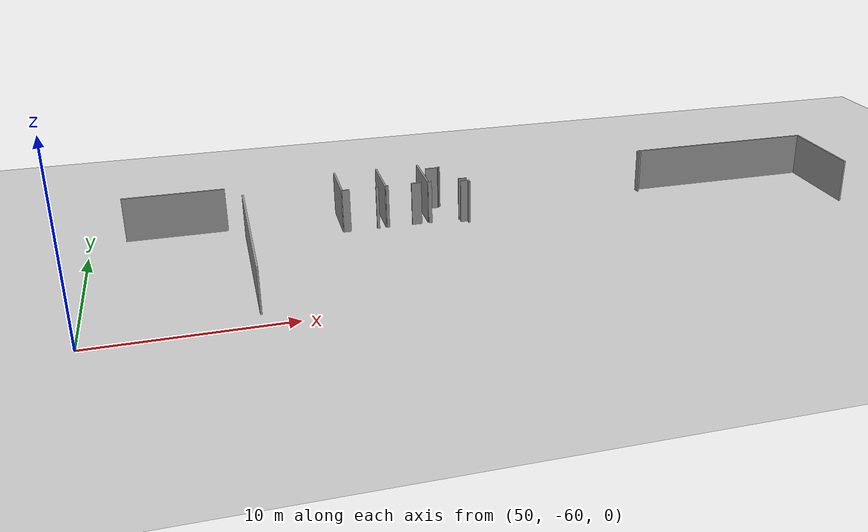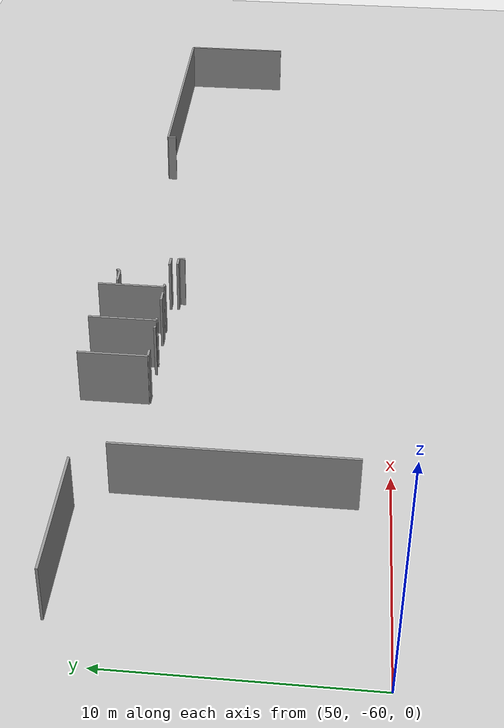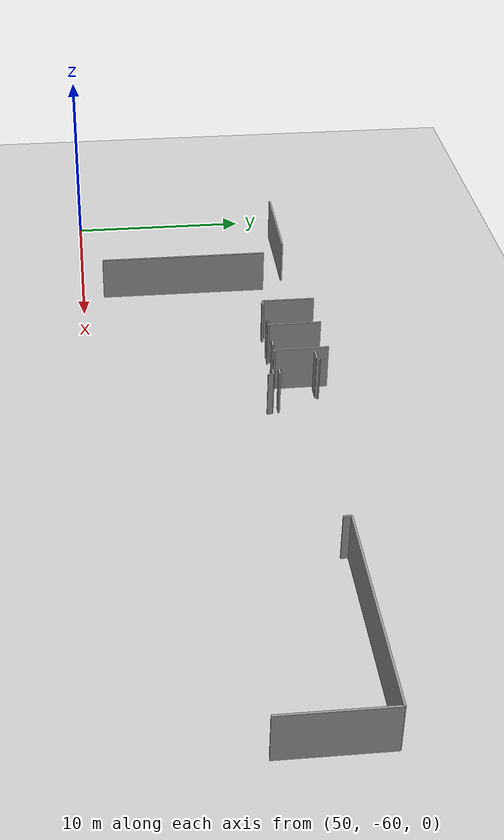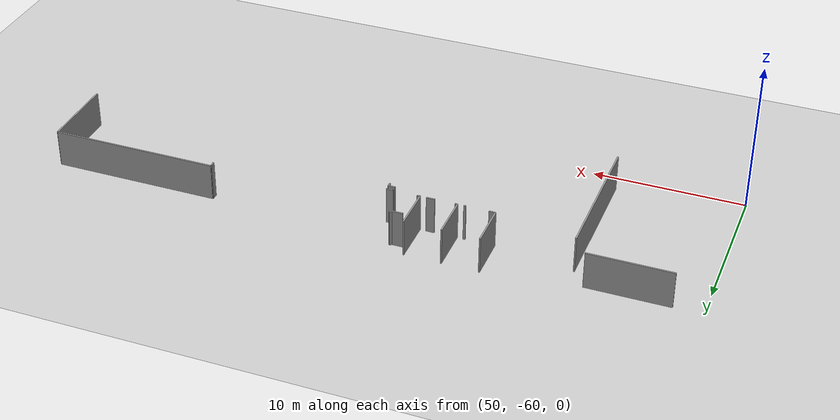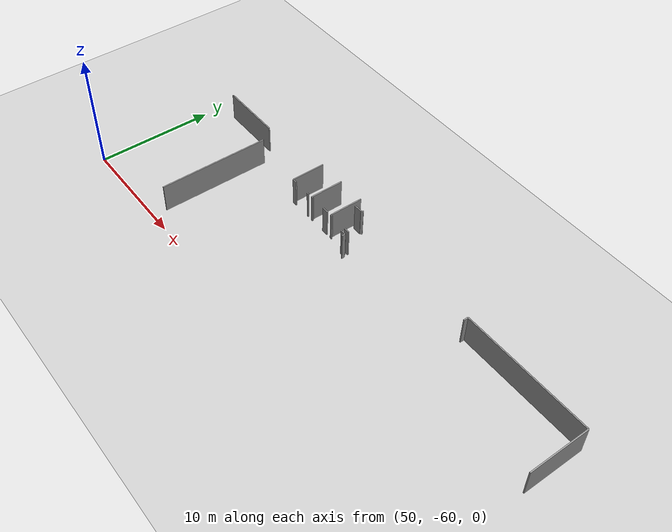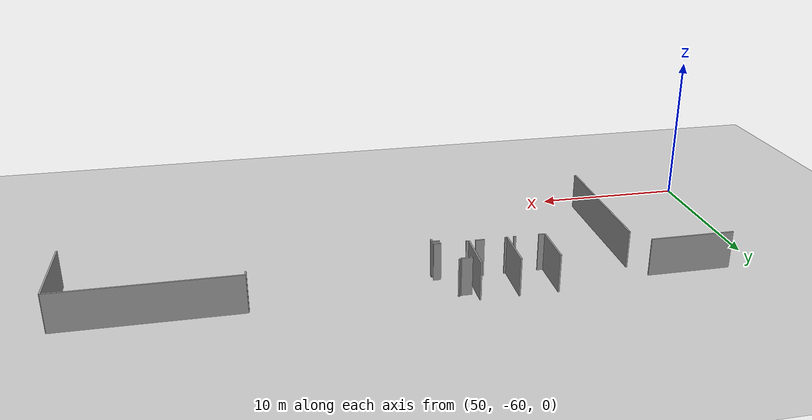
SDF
<sdf version="1.6">
 <world name="default">
  <model name="ground_plane">
   <static>1</static>
   <link name="link">
    <collision name="collision">
     <geometry><plane><normal>0 0 1</normal><size>100 100</size></plane></geometry>
     <surface><friction><ode><mu>100</mu><mu2>50</mu2></ode></friction></surface>
    </collision>
    <visual name="visual">
     <cast_shadows>0</cast_shadows>
     <geometry><plane><normal>0 0 1</normal><size>100 100</size></plane></geometry>
     <material>
      <script><uri>file://media/materials/scripts/gazebo.material</uri><name>Gazebo/Grey</name></script>
     </material>
    </visual>
   </link>
  </model>
  <model name="0510035517_A_40_1_105">
   <static>1</static>
   <link name="Wall_644">
    <collision name="Wall_644_Collision">
     <geometry><box><size>9.45286339694 0.1 2.5</size></box></geometry>
     <pose>4.72643169847 0 1.25 0 0 0</pose>
    </collision>
    <visual name="Wall_644_Visual">
     <pose>4.72643169847 0 1.25 0 0 0</pose>
     <geometry><box><size>9.45286339694 0.1 2.5</size></box></geometry>
     <material>
      <script><uri>file://media/materials/scripts/gazebo.material</uri><name>Gazebo/Grey</name></script>
      <ambient>1 1 1 1</ambient>
     </material>
    </visual>
    <pose>152.823113043 -113.127847353 0 0 0 -1.57079632679</pose>
   </link>
   <link name="Wall_650">
    <collision name="Wall_650_Collision">
     <geometry><box><size>5.46107266986 0.1 2.5</size></box></geometry>
     <pose>2.73053633493 0 1.25 0 0 0</pose>
    </collision>
    <visual name="Wall_650_Visual">
     <pose>2.73053633493 0 1.25 0 0 0</pose>
     <geometry><box><size>5.46107266986 0.1 2.5</size></box></geometry>
     <material>
      <script><uri>file://media/materials/scripts/gazebo.material</uri><name>Gazebo/Grey</name></script>
      <ambient>1 1 1 1</ambient>
     </material>
    </visual>
    <pose>151.919838864 -111.90636854 0 0 0 3.14159265359</pose>
   </link>
   <link name="Wall_688">
    <collision name="Wall_688_Collision">
     <geometry><box><size>0.456211916154 0.1 2.5</size></box></geometry>
     <pose>0.228105958077 0 1.25 0 0 0</pose>
    </collision>
    <visual name="Wall_688_Visual">
     <pose>0.228105958077 0 1.25 0 0 0</pose>
     <geometry><box><size>0.456211916154 0.1 2.5</size></box></geometry>
     <material>
      <script><uri>file://media/materials/scripts/gazebo.material</uri><name>Gazebo/Grey</name></script>
      <ambient>1 1 1 1</ambient>
     </material>
    </visual>
    <pose>164.776881874 -114.254525584 0 0 0 0.0</pose>
   </link>
   <link name="Wall_689">
    <collision name="Wall_689_Collision">
     <geometry><box><size>0.282876803721 0.1 2.5</size></box></geometry>
     <pose>0.14143840186 0 1.25 0 0 0</pose>
    </collision>
    <visual name="Wall_689_Visual">
     <pose>0.14143840186 0 1.25 0 0 0</pose>
     <geometry><box><size>0.282876803721 0.1 2.5</size></box></geometry>
     <material>
      <script><uri>file://media/materials/scripts/gazebo.material</uri><name>Gazebo/Grey</name></script>
      <ambient>1 1 1 1</ambient>
     </material>
    </visual>
    <pose>165.23309379 -114.254525584 0 0 0 -1.57079632679</pose>
   </link>
   <link name="Wall_696">
    <collision name="Wall_696_Collision">
     <geometry><box><size>0.394197594403 0.1 2.5</size></box></geometry>
     <pose>0.197098797202 0 1.25 0 0 0</pose>
    </collision>
    <visual name="Wall_696_Visual">
     <pose>0.197098797202 0 1.25 0 0 0</pose>
     <geometry><box><size>0.394197594403 0.1 2.5</size></box></geometry>
     <material>
      <script><uri>file://media/materials/scripts/gazebo.material</uri><name>Gazebo/Grey</name></script>
      <ambient>1 1 1 1</ambient>
     </material>
    </visual>
    <pose>176.481322633 -112.670618809 0 0 0 1.57079632679</pose>
   </link>
   <link name="Wall_697">
    <collision name="Wall_697_Collision">
     <geometry><box><size>11.0502404961 0.1 2.5</size></box></geometry>
     <pose>5.52512024806 0 1.25 0 0 0</pose>
    </collision>
    <visual name="Wall_697_Visual">
     <pose>5.52512024806 0 1.25 0 0 0</pose>
     <geometry><box><size>11.0502404961 0.1 2.5</size></box></geometry>
     <material>
      <script><uri>file://media/materials/scripts/gazebo.material</uri><name>Gazebo/Grey</name></script>
      <ambient>1 1 1 1</ambient>
     </material>
    </visual>
    <pose>176.481322633 -112.276421214 0 0 0 0.0</pose>
   </link>
   <link name="Wall_698">
    <collision name="Wall_698_Collision">
     <geometry><box><size>5.14744286232 0.1 2.5</size></box></geometry>
     <pose>2.57372143116 0 1.25 0 0 0</pose>
    </collision>
    <visual name="Wall_698_Visual">
     <pose>2.57372143116 0 1.25 0 0 0</pose>
     <geometry><box><size>5.14744286232 0.1 2.5</size></box></geometry>
     <material>
      <script><uri>file://media/materials/scripts/gazebo.material</uri><name>Gazebo/Grey</name></script>
      <ambient>1 1 1 1</ambient>
     </material>
    </visual>
    <pose>187.531563129 -112.276421214 0 0 0 -1.57079632679</pose>
   </link>
   <link name="Wall_718">
    <collision name="Wall_718_Collision">
     <geometry><box><size>2.88951157368 0.1 2.5</size></box></geometry>
     <pose>1.44475578684 0 1.25 0 0 0</pose>
    </collision>
    <visual name="Wall_718_Visual">
     <pose>1.44475578684 0 1.25 0 0 0</pose>
     <geometry><box><size>2.88951157368 0.1 2.5</size></box></geometry>
     <material>
      <script><uri>file://media/materials/scripts/gazebo.material</uri><name>Gazebo/Grey</name></script>
      <ambient>1 1 1 1</ambient>
     </material>
    </visual>
    <pose>158.117204527 -113.900230648 0 0 0 1.57079632679</pose>
   </link>
   <link name="Wall_721">
    <collision name="Wall_721_Collision">
     <geometry><box><size>0.149698506192 0.1 2.5</size></box></geometry>
     <pose>0.074849253096 0 1.25 0 0 0</pose>
    </collision>
    <visual name="Wall_721_Visual">
     <pose>0.074849253096 0 1.25 0 0 0</pose>
     <geometry><box><size>0.149698506192 0.1 2.5</size></box></geometry>
     <material>
      <script><uri>file://media/materials/scripts/gazebo.material</uri><name>Gazebo/Grey</name></script>
      <ambient>1 1 1 1</ambient>
     </material>
    </visual>
    <pose>160.153510862 -113.908871987 0 0 0 3.14159265359</pose>
   </link>
   <link name="Wall_722">
    <collision name="Wall_722_Collision">
     <geometry><box><size>0.417923548013 0.1 2.5</size></box></geometry>
     <pose>0.208961774006 0 1.25 0 0 0</pose>
    </collision>
    <visual name="Wall_722_Visual">
     <pose>0.208961774006 0 1.25 0 0 0</pose>
     <geometry><box><size>0.417923548013 0.1 2.5</size></box></geometry>
     <material>
      <script><uri>file://media/materials/scripts/gazebo.material</uri><name>Gazebo/Grey</name></script>
      <ambient>1 1 1 1</ambient>
     </material>
    </visual>
    <pose>158.535038727 -113.908871987 0 0 0 3.12091433619</pose>
   </link>
   <link name="Wall_723">
    <collision name="Wall_723_Collision">
     <geometry><box><size>2.88468258961 0.1 2.5</size></box></geometry>
     <pose>1.4423412948 0 1.25 0 0 0</pose>
    </collision>
    <visual name="Wall_723_Visual">
     <pose>1.4423412948 0 1.25 0 0 0</pose>
     <geometry><box><size>2.88468258961 0.1 2.5</size></box></geometry>
     <material>
      <script><uri>file://media/materials/scripts/gazebo.material</uri><name>Gazebo/Grey</name></script>
      <ambient>1 1 1 1</ambient>
     </material>
    </visual>
    <pose>160.556349796 -113.906838731 0 0 0 1.57079632679</pose>
   </link>
   <link name="Wall_726">
    <collision name="Wall_726_Collision">
     <geometry><box><size>0.560416309258 0.1 2.5</size></box></geometry>
     <pose>0.280208154629 0 1.25 0 0 0</pose>
    </collision>
    <visual name="Wall_726_Visual">
     <pose>0.280208154629 0 1.25 0 0 0</pose>
     <geometry><box><size>0.560416309258 0.1 2.5</size></box></geometry>
     <material>
      <script><uri>file://media/materials/scripts/gazebo.material</uri><name>Gazebo/Grey</name></script>
      <ambient>1 1 1 1</ambient>
     </material>
    </visual>
    <pose>162.587064677 -113.896164135 0 0 0 3.14159265359</pose>
   </link>
   <link name="Wall_727">
    <collision name="Wall_727_Collision">
     <geometry><box><size>0.162503180295 0.1 2.5</size></box></geometry>
     <pose>0.0812515901473 0 1.25 0 0 0</pose>
    </collision>
    <visual name="Wall_727_Visual">
     <pose>0.0812515901473 0 1.25 0 0 0</pose>
     <geometry><box><size>0.162503180295 0.1 2.5</size></box></geometry>
     <material>
      <script><uri>file://media/materials/scripts/gazebo.material</uri><name>Gazebo/Grey</name></script>
      <ambient>1 1 1 1</ambient>
     </material>
    </visual>
    <pose>160.718501998 -113.896164135 0 0 0 -3.07585678259</pose>
   </link>
   <link name="Wall_728">
    <collision name="Wall_728_Collision">
     <geometry><box><size>2.87731203497 0.1 2.5</size></box></geometry>
     <pose>1.43865601749 0 1.25 0 0 0</pose>
    </collision>
    <visual name="Wall_728_Visual">
     <pose>1.43865601749 0 1.25 0 0 0</pose>
     <geometry><box><size>2.87731203497 0.1 2.5</size></box></geometry>
     <material>
      <script><uri>file://media/materials/scripts/gazebo.material</uri><name>Gazebo/Grey</name></script>
      <ambient>1 1 1 1</ambient>
     </material>
    </visual>
    <pose>162.989649454 -113.887522795 0 0 0 1.57079632679</pose>
   </link>
   <link name="Wall_732">
    <collision name="Wall_732_Collision">
     <geometry><box><size>0.699186062027 0.1 2.5</size></box></geometry>
     <pose>0.349593031014 0 1.25 0 0 0</pose>
    </collision>
    <visual name="Wall_732_Visual">
     <pose>0.349593031014 0 1.25 0 0 0</pose>
     <geometry><box><size>0.699186062027 0.1 2.5</size></box></geometry>
     <material>
      <script><uri>file://media/materials/scripts/gazebo.material</uri><name>Gazebo/Grey</name></script>
      <ambient>1 1 1 1</ambient>
     </material>
    </visual>
    <pose>163.312428915 -111.791489551 0 0 0 0.0</pose>
   </link>
   <link name="Wall_733">
    <collision name="Wall_733_Collision">
     <geometry><box><size>0.201516256096 0.1 2.5</size></box></geometry>
     <pose>0.100758128048 0 1.25 0 0 0</pose>
    </collision>
    <visual name="Wall_733_Visual">
     <pose>0.100758128048 0 1.25 0 0 0</pose>
     <geometry><box><size>0.201516256096 0.1 2.5</size></box></geometry>
     <material>
      <script><uri>file://media/materials/scripts/gazebo.material</uri><name>Gazebo/Grey</name></script>
      <ambient>1 1 1 1</ambient>
     </material>
    </visual>
    <pose>164.011614977 -111.791489551 0 0 0 0.708626272128</pose>
   </link>
   <link name="Wall_737">
    <collision name="Wall_737_Collision">
     <geometry><box><size>0.48086515062 0.1 2.5</size></box></geometry>
     <pose>0.24043257531 0 1.25 0 0 0</pose>
    </collision>
    <visual name="Wall_737_Visual">
     <pose>0.24043257531 0 1.25 0 0 0</pose>
     <geometry><box><size>0.48086515062 0.1 2.5</size></box></geometry>
     <material>
      <script><uri>file://media/materials/scripts/gazebo.material</uri><name>Gazebo/Grey</name></script>
      <ambient>1 1 1 1</ambient>
     </material>
    </visual>
    <pose>165.230043906 -113.907347045 0 0 0 3.14159265359</pose>
   </link>
   <link name="Wall_738">
    <collision name="Wall_738_Collision">
     <geometry><box><size>0.198472578088 0.1 2.5</size></box></geometry>
     <pose>0.0992362890441 0 1.25 0 0 0</pose>
    </collision>
    <visual name="Wall_738_Visual">
     <pose>0.0992362890441 0 1.25 0 0 0</pose>
     <geometry><box><size>0.198472578088 0.1 2.5</size></box></geometry>
     <material>
      <script><uri>file://media/materials/scripts/gazebo.material</uri><name>Gazebo/Grey</name></script>
      <ambient>1 1 1 1</ambient>
     </material>
    </visual>
    <pose>163.187129487 -113.907347045 0 0 0 3.04154173812</pose>
   </link>
   <pose>-94.6 63.7835382475 0 0 0 0</pose>
  </model>
 </world>
</sdf>
